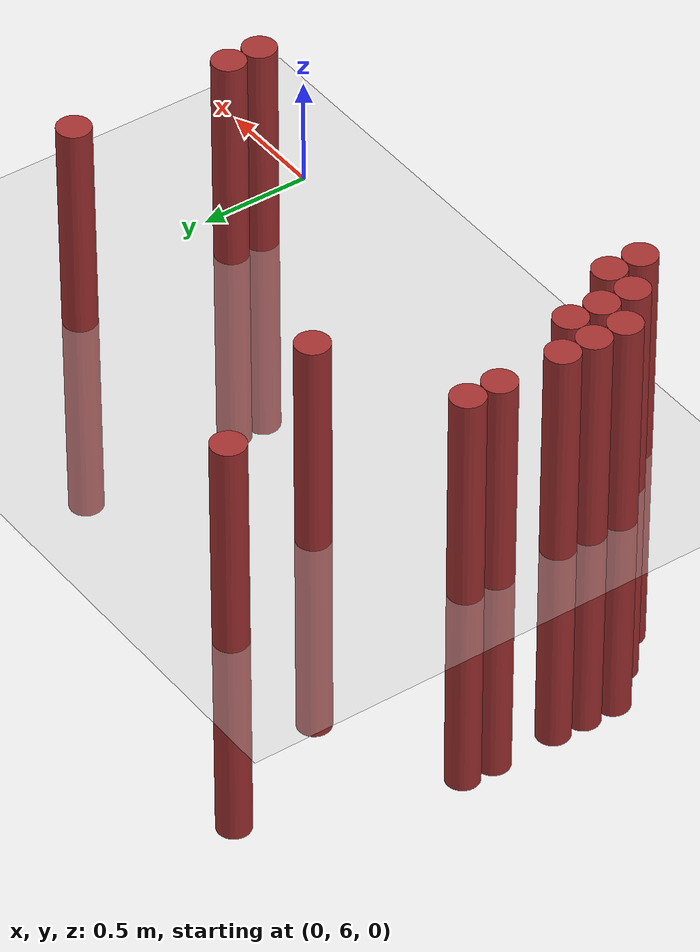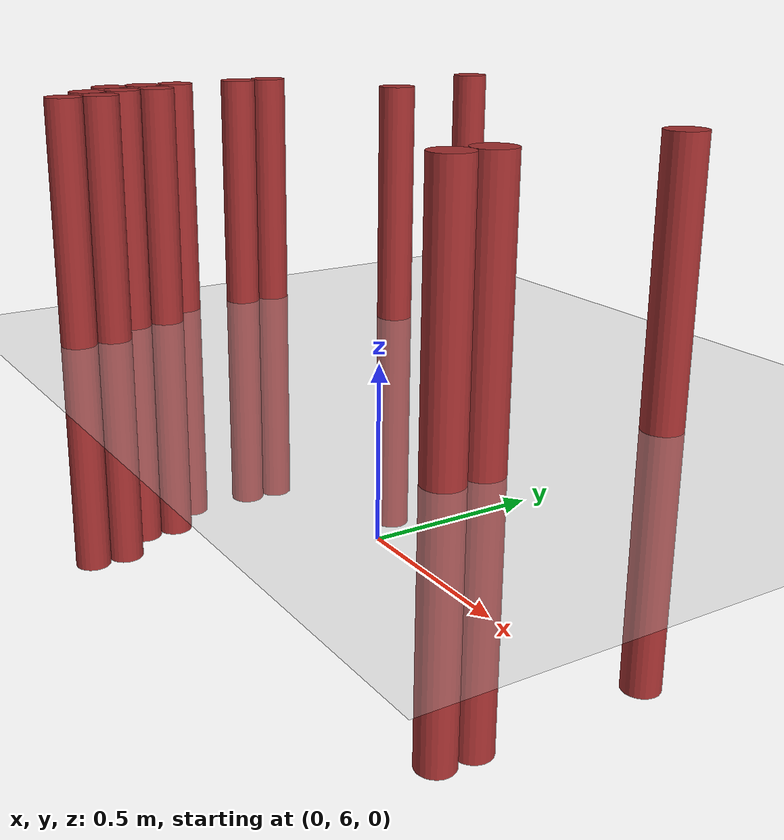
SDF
<sdf version="1.6">
 <world name="default">
  <model name="ground_plane">
   <static>1</static>
   <link name="link">
    <collision name="collision">
     <geometry><plane><normal>0 0 1</normal><size>100 100</size></plane></geometry>
     <surface><friction><ode><mu>100</mu><mu2>50</mu2></ode></friction></surface>
    </collision>
    <visual name="visual">
     <cast_shadows>0</cast_shadows>
     <geometry><plane><normal>0 0 1</normal><size>100 100</size></plane></geometry>
     <material>
      <script><uri>file://media/materials/scripts/gazebo.material</uri><name>Gazebo/Grey</name></script>
     </material>
    </visual>
   </link>
  </model>
  <model name="unit_cylinder_166">
   <static>1</static>
   <pose>-2.475000 6.225000 0.000000 0.000000 0.000000 0.000000</pose>
   <link name="link">
    <inertial>
     <mass>1</mass>
     <inertia><ixx>0.145833</ixx><ixy>0</ixy><ixz>0</ixz><iyy>0.145833</iyy><iyz>0</iyz><izz>0.125</izz></inertia>
    </inertial>
    <collision name="collision">
     <geometry><cylinder><radius>0.075000</radius><length>2</length></cylinder></geometry>
    </collision>
    <visual name="visual">
     <geometry><cylinder><radius>0.075000</radius><length>2</length></cylinder></geometry>
     <material>
      <ambient>0.648000 0.192000 0.192000 1</ambient>
      <diffuse>0.648000 0.192000 0.192000 1</diffuse>
     </material>
     <material>
      <script><name>Gazebo/Grey</name><uri>file://media/materials/scripts/gazebo.material</uri></script>
     </material>
    </visual>
   </link>
  </model>
  <model name="unit_cylinder_167">
   <static>1</static>
   <pose>-2.475000 6.375000 0.000000 0.000000 0.000000 0.000000</pose>
   <link name="link">
    <inertial>
     <mass>1</mass>
     <inertia><ixx>0.145833</ixx><ixy>0</ixy><ixz>0</ixz><iyy>0.145833</iyy><iyz>0</iyz><izz>0.125</izz></inertia>
    </inertial>
    <collision name="collision">
     <geometry><cylinder><radius>0.075000</radius><length>2</length></cylinder></geometry>
    </collision>
    <visual name="visual">
     <geometry><cylinder><radius>0.075000</radius><length>2</length></cylinder></geometry>
     <material>
      <ambient>0.648000 0.192000 0.192000 1</ambient>
      <diffuse>0.648000 0.192000 0.192000 1</diffuse>
     </material>
     <material>
      <script><name>Gazebo/Grey</name><uri>file://media/materials/scripts/gazebo.material</uri></script>
     </material>
    </visual>
   </link>
  </model>
  <model name="unit_cylinder_168">
   <static>1</static>
   <pose>-2.475000 6.525000 0.000000 0.000000 0.000000 0.000000</pose>
   <link name="link">
    <inertial>
     <mass>1</mass>
     <inertia><ixx>0.145833</ixx><ixy>0</ixy><ixz>0</ixz><iyy>0.145833</iyy><iyz>0</iyz><izz>0.125</izz></inertia>
    </inertial>
    <collision name="collision">
     <geometry><cylinder><radius>0.075000</radius><length>2</length></cylinder></geometry>
    </collision>
    <visual name="visual">
     <geometry><cylinder><radius>0.075000</radius><length>2</length></cylinder></geometry>
     <material>
      <ambient>0.648000 0.192000 0.192000 1</ambient>
      <diffuse>0.648000 0.192000 0.192000 1</diffuse>
     </material>
     <material>
      <script><name>Gazebo/Grey</name><uri>file://media/materials/scripts/gazebo.material</uri></script>
     </material>
    </visual>
   </link>
  </model>
  <model name="unit_cylinder_169">
   <static>1</static>
   <pose>-2.475000 6.825000 0.000000 0.000000 0.000000 0.000000</pose>
   <link name="link">
    <inertial>
     <mass>1</mass>
     <inertia><ixx>0.145833</ixx><ixy>0</ixy><ixz>0</ixz><iyy>0.145833</iyy><iyz>0</iyz><izz>0.125</izz></inertia>
    </inertial>
    <collision name="collision">
     <geometry><cylinder><radius>0.075000</radius><length>2</length></cylinder></geometry>
    </collision>
    <visual name="visual">
     <geometry><cylinder><radius>0.075000</radius><length>2</length></cylinder></geometry>
     <material>
      <ambient>0.648000 0.192000 0.192000 1</ambient>
      <diffuse>0.648000 0.192000 0.192000 1</diffuse>
     </material>
     <material>
      <script><name>Gazebo/Grey</name><uri>file://media/materials/scripts/gazebo.material</uri></script>
     </material>
    </visual>
   </link>
  </model>
  <model name="unit_cylinder_170">
   <static>1</static>
   <pose>-2.475000 6.975000 0.000000 0.000000 0.000000 0.000000</pose>
   <link name="link">
    <inertial>
     <mass>1</mass>
     <inertia><ixx>0.145833</ixx><ixy>0</ixy><ixz>0</ixz><iyy>0.145833</iyy><iyz>0</iyz><izz>0.125</izz></inertia>
    </inertial>
    <collision name="collision">
     <geometry><cylinder><radius>0.075000</radius><length>2</length></cylinder></geometry>
    </collision>
    <visual name="visual">
     <geometry><cylinder><radius>0.075000</radius><length>2</length></cylinder></geometry>
     <material>
      <ambient>0.648000 0.192000 0.192000 1</ambient>
      <diffuse>0.648000 0.192000 0.192000 1</diffuse>
     </material>
     <material>
      <script><name>Gazebo/Grey</name><uri>file://media/materials/scripts/gazebo.material</uri></script>
     </material>
    </visual>
   </link>
  </model>
  <model name="unit_cylinder_171">
   <static>1</static>
   <pose>-2.325000 6.075000 0.000000 0.000000 0.000000 0.000000</pose>
   <link name="link">
    <inertial>
     <mass>1</mass>
     <inertia><ixx>0.145833</ixx><ixy>0</ixy><ixz>0</ixz><iyy>0.145833</iyy><iyz>0</iyz><izz>0.125</izz></inertia>
    </inertial>
    <collision name="collision">
     <geometry><cylinder><radius>0.075000</radius><length>2</length></cylinder></geometry>
    </collision>
    <visual name="visual">
     <geometry><cylinder><radius>0.075000</radius><length>2</length></cylinder></geometry>
     <material>
      <ambient>0.648000 0.192000 0.192000 1</ambient>
      <diffuse>0.648000 0.192000 0.192000 1</diffuse>
     </material>
     <material>
      <script><name>Gazebo/Grey</name><uri>file://media/materials/scripts/gazebo.material</uri></script>
     </material>
    </visual>
   </link>
  </model>
  <model name="unit_cylinder_172">
   <static>1</static>
   <pose>-2.325000 6.225000 0.000000 0.000000 0.000000 0.000000</pose>
   <link name="link">
    <inertial>
     <mass>1</mass>
     <inertia><ixx>0.145833</ixx><ixy>0</ixy><ixz>0</ixz><iyy>0.145833</iyy><iyz>0</iyz><izz>0.125</izz></inertia>
    </inertial>
    <collision name="collision">
     <geometry><cylinder><radius>0.075000</radius><length>2</length></cylinder></geometry>
    </collision>
    <visual name="visual">
     <geometry><cylinder><radius>0.075000</radius><length>2</length></cylinder></geometry>
     <material>
      <ambient>0.648000 0.192000 0.192000 1</ambient>
      <diffuse>0.648000 0.192000 0.192000 1</diffuse>
     </material>
     <material>
      <script><name>Gazebo/Grey</name><uri>file://media/materials/scripts/gazebo.material</uri></script>
     </material>
    </visual>
   </link>
  </model>
  <model name="unit_cylinder_173">
   <static>1</static>
   <pose>-2.325000 6.375000 0.000000 0.000000 0.000000 0.000000</pose>
   <link name="link">
    <inertial>
     <mass>1</mass>
     <inertia><ixx>0.145833</ixx><ixy>0</ixy><ixz>0</ixz><iyy>0.145833</iyy><iyz>0</iyz><izz>0.125</izz></inertia>
    </inertial>
    <collision name="collision">
     <geometry><cylinder><radius>0.075000</radius><length>2</length></cylinder></geometry>
    </collision>
    <visual name="visual">
     <geometry><cylinder><radius>0.075000</radius><length>2</length></cylinder></geometry>
     <material>
      <ambient>0.648000 0.192000 0.192000 1</ambient>
      <diffuse>0.648000 0.192000 0.192000 1</diffuse>
     </material>
     <material>
      <script><name>Gazebo/Grey</name><uri>file://media/materials/scripts/gazebo.material</uri></script>
     </material>
    </visual>
   </link>
  </model>
  <model name="unit_cylinder_174">
   <static>1</static>
   <pose>-2.175000 5.925000 0.000000 0.000000 0.000000 0.000000</pose>
   <link name="link">
    <inertial>
     <mass>1</mass>
     <inertia><ixx>0.145833</ixx><ixy>0</ixy><ixz>0</ixz><iyy>0.145833</iyy><iyz>0</iyz><izz>0.125</izz></inertia>
    </inertial>
    <collision name="collision">
     <geometry><cylinder><radius>0.075000</radius><length>2</length></cylinder></geometry>
    </collision>
    <visual name="visual">
     <geometry><cylinder><radius>0.075000</radius><length>2</length></cylinder></geometry>
     <material>
      <ambient>0.648000 0.192000 0.192000 1</ambient>
      <diffuse>0.648000 0.192000 0.192000 1</diffuse>
     </material>
     <material>
      <script><name>Gazebo/Grey</name><uri>file://media/materials/scripts/gazebo.material</uri></script>
     </material>
    </visual>
   </link>
  </model>
  <model name="unit_cylinder_175">
   <static>1</static>
   <pose>-2.175000 6.075000 0.000000 0.000000 0.000000 0.000000</pose>
   <link name="link">
    <inertial>
     <mass>1</mass>
     <inertia><ixx>0.145833</ixx><ixy>0</ixy><ixz>0</ixz><iyy>0.145833</iyy><iyz>0</iyz><izz>0.125</izz></inertia>
    </inertial>
    <collision name="collision">
     <geometry><cylinder><radius>0.075000</radius><length>2</length></cylinder></geometry>
    </collision>
    <visual name="visual">
     <geometry><cylinder><radius>0.075000</radius><length>2</length></cylinder></geometry>
     <material>
      <ambient>0.648000 0.192000 0.192000 1</ambient>
      <diffuse>0.648000 0.192000 0.192000 1</diffuse>
     </material>
     <material>
      <script><name>Gazebo/Grey</name><uri>file://media/materials/scripts/gazebo.material</uri></script>
     </material>
    </visual>
   </link>
  </model>
  <model name="unit_cylinder_176">
   <static>1</static>
   <pose>-2.175000 7.875000 0.000000 0.000000 0.000000 0.000000</pose>
   <link name="link">
    <inertial>
     <mass>1</mass>
     <inertia><ixx>0.145833</ixx><ixy>0</ixy><ixz>0</ixz><iyy>0.145833</iyy><iyz>0</iyz><izz>0.125</izz></inertia>
    </inertial>
    <collision name="collision">
     <geometry><cylinder><radius>0.075000</radius><length>2</length></cylinder></geometry>
    </collision>
    <visual name="visual">
     <geometry><cylinder><radius>0.075000</radius><length>2</length></cylinder></geometry>
     <material>
      <ambient>0.648000 0.192000 0.192000 1</ambient>
      <diffuse>0.648000 0.192000 0.192000 1</diffuse>
     </material>
     <material>
      <script><name>Gazebo/Grey</name><uri>file://media/materials/scripts/gazebo.material</uri></script>
     </material>
    </visual>
   </link>
  </model>
  <model name="unit_cylinder_179">
   <static>1</static>
   <pose>-1.875000 7.275000 0.000000 0.000000 0.000000 0.000000</pose>
   <link name="link">
    <inertial>
     <mass>1</mass>
     <inertia><ixx>0.145833</ixx><ixy>0</ixy><ixz>0</ixz><iyy>0.145833</iyy><iyz>0</iyz><izz>0.125</izz></inertia>
    </inertial>
    <collision name="collision">
     <geometry><cylinder><radius>0.075000</radius><length>2</length></cylinder></geometry>
    </collision>
    <visual name="visual">
     <geometry><cylinder><radius>0.075000</radius><length>2</length></cylinder></geometry>
     <material>
      <ambient>0.648000 0.192000 0.192000 1</ambient>
      <diffuse>0.648000 0.192000 0.192000 1</diffuse>
     </material>
     <material>
      <script><name>Gazebo/Grey</name><uri>file://media/materials/scripts/gazebo.material</uri></script>
     </material>
    </visual>
   </link>
  </model>
  <model name="unit_cylinder_203">
   <static>1</static>
   <pose>-0.225000 6.375000 0.000000 0.000000 0.000000 0.000000</pose>
   <link name="link">
    <inertial>
     <mass>1</mass>
     <inertia><ixx>0.145833</ixx><ixy>0</ixy><ixz>0</ixz><iyy>0.145833</iyy><iyz>0</iyz><izz>0.125</izz></inertia>
    </inertial>
    <collision name="collision">
     <geometry><cylinder><radius>0.075000</radius><length>2</length></cylinder></geometry>
    </collision>
    <visual name="visual">
     <geometry><cylinder><radius>0.075000</radius><length>2</length></cylinder></geometry>
     <material>
      <ambient>0.648000 0.192000 0.192000 1</ambient>
      <diffuse>0.648000 0.192000 0.192000 1</diffuse>
     </material>
     <material>
      <script><name>Gazebo/Grey</name><uri>file://media/materials/scripts/gazebo.material</uri></script>
     </material>
    </visual>
   </link>
  </model>
  <model name="unit_cylinder_204">
   <static>1</static>
   <pose>-0.225000 6.525000 0.000000 0.000000 0.000000 0.000000</pose>
   <link name="link">
    <inertial>
     <mass>1</mass>
     <inertia><ixx>0.145833</ixx><ixy>0</ixy><ixz>0</ixz><iyy>0.145833</iyy><iyz>0</iyz><izz>0.125</izz></inertia>
    </inertial>
    <collision name="collision">
     <geometry><cylinder><radius>0.075000</radius><length>2</length></cylinder></geometry>
    </collision>
    <visual name="visual">
     <geometry><cylinder><radius>0.075000</radius><length>2</length></cylinder></geometry>
     <material>
      <ambient>0.648000 0.192000 0.192000 1</ambient>
      <diffuse>0.648000 0.192000 0.192000 1</diffuse>
     </material>
     <material>
      <script><name>Gazebo/Grey</name><uri>file://media/materials/scripts/gazebo.material</uri></script>
     </material>
    </visual>
   </link>
  </model>
  <model name="unit_cylinder_205">
   <static>1</static>
   <pose>-0.225000 7.275000 0.000000 0.000000 0.000000 0.000000</pose>
   <link name="link">
    <inertial>
     <mass>1</mass>
     <inertia><ixx>0.145833</ixx><ixy>0</ixy><ixz>0</ixz><iyy>0.145833</iyy><iyz>0</iyz><izz>0.125</izz></inertia>
    </inertial>
    <collision name="collision">
     <geometry><cylinder><radius>0.075000</radius><length>2</length></cylinder></geometry>
    </collision>
    <visual name="visual">
     <geometry><cylinder><radius>0.075000</radius><length>2</length></cylinder></geometry>
     <material>
      <ambient>0.648000 0.192000 0.192000 1</ambient>
      <diffuse>0.648000 0.192000 0.192000 1</diffuse>
     </material>
     <material>
      <script><name>Gazebo/Grey</name><uri>file://media/materials/scripts/gazebo.material</uri></script>
     </material>
    </visual>
   </link>
  </model>
 </world>
</sdf>
